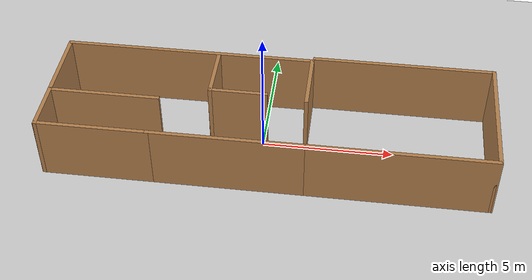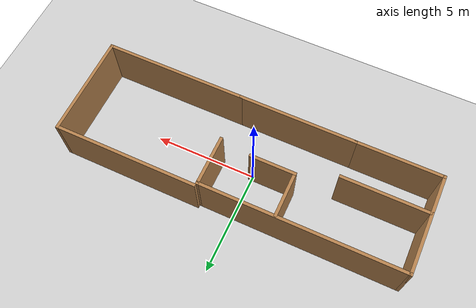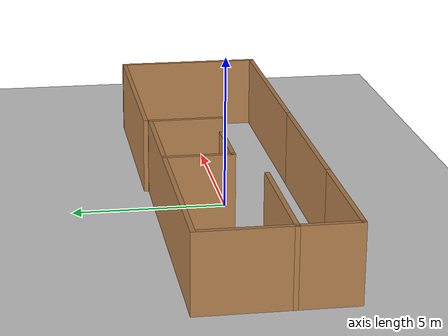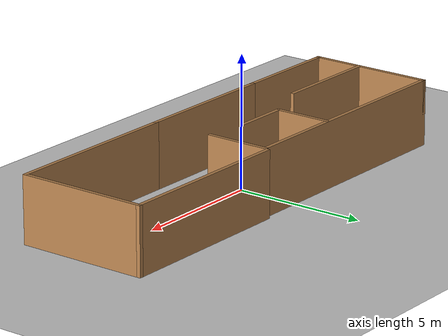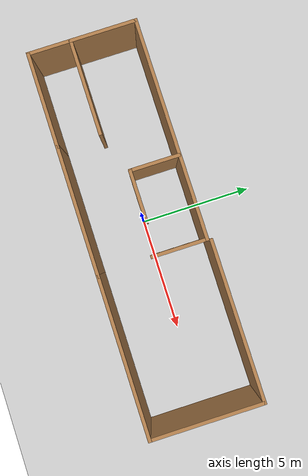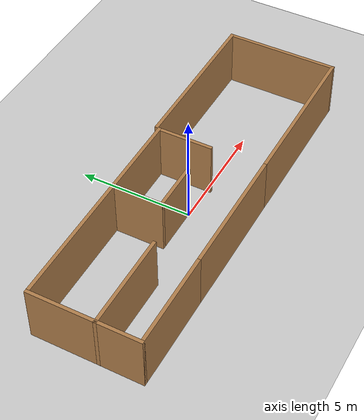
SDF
<sdf version="1.6">
 <world name="default">
  <light name="sun" type="directional">
   <pose>0 0 10 0 -0 0</pose>
   <diffuse>0.8 0.8 0.8 1</diffuse>
   <specular>0.2 0.2 0.2 1</specular>
   <attenuation>
    <range>1000</range>
    <constant>0.9</constant>
    <linear>0.01</linear>
    <quadratic>0.001</quadratic>
   </attenuation>
   <direction>-0.5 0.1 -0.9</direction>
  </light>
  <model name="ground_plane">
   <static>1</static>
   <link name="link">
    <collision name="collision">
     <geometry><plane><normal>0 0 1</normal><size>100 100</size></plane></geometry>
     <surface>
      <contact><collide_bitmask>65535</collide_bitmask></contact>
      <friction><ode><mu>100</mu><mu2>50</mu2></ode></friction>
     </surface>
    </collision>
    <visual name="visual">
     <cast_shadows>0</cast_shadows>
     <geometry><plane><normal>0 0 1</normal><size>100 100</size></plane></geometry>
     <material>
      <script><uri>file://media/materials/scripts/gazebo.material</uri><name>Gazebo/Grey</name></script>
     </material>
    </visual>
   </link>
  </model>
  <gravity>0 0 -9.8</gravity>
  <magnetic_field>6e-06 2.3e-05 -4.2e-05</magnetic_field>
  <atmosphere type="adiabatic"/>
  <physics name="default_physics" default="0" type="ode">
   <max_step_size>0.001</max_step_size>
   <real_time_factor>1</real_time_factor>
   <real_time_update_rate>1000</real_time_update_rate>
  </physics>
  <scene><ambient>0.4 0.4 0.4 1</ambient><background>0.7 0.7 0.7 1</background><shadows>1</shadows></scene>
  <audio><device>default</device></audio>
  <spherical_coordinates>
   <surface_model>EARTH_WGS84</surface_model>
   <latitude_deg>0</latitude_deg>
   <longitude_deg>0</longitude_deg>
   <elevation>0</elevation>
   <heading_deg>0</heading_deg>
  </spherical_coordinates>
  <model name="propmotor">
   <pose>0.309188 -0.028273 0 0 -0 0</pose>
   <link name="Wall_1">
    <collision name="Wall_1_Collision">
     <geometry><box><size>7 0.15 2.5</size></box></geometry>
     <pose>0 0 1.25 0 -0 0</pose>
    </collision>
    <visual name="Wall_1_Visual">
     <pose>0 0 1.25 0 -0 0</pose>
     <geometry><box><size>7 0.15 2.5</size></box></geometry>
     <material>
      <script><uri>file://media/materials/scripts/gazebo.material</uri><name>Gazebo/Wood</name></script>
      <ambient>1 1 1 1</ambient>
     </material>
     <meta><layer>0</layer></meta>
    </visual>
    <pose>4.85 -2.425 0 0 -0 0</pose>
   </link>
   <link name="Wall_11">
    <collision name="Wall_11_Collision">
     <geometry><box><size>2 0.15 2.5</size></box></geometry>
     <pose>0 0 1.25 0 -0 0</pose>
    </collision>
    <visual name="Wall_11_Visual">
     <pose>0 0 1.25 0 -0 0</pose>
     <geometry><box><size>2 0.15 2.5</size></box></geometry>
     <material>
      <script><uri>file://media/materials/scripts/gazebo.material</uri><name>Gazebo/Wood</name></script>
      <ambient>1 1 1 1</ambient>
     </material>
     <meta><layer>0</layer></meta>
    </visual>
    <pose>-8.275 -1.5 0 0 -0 -1.5708</pose>
   </link>
   <link name="Wall_12">
    <collision name="Wall_12_Collision">
     <geometry><box><size>4.25 0.15 2.5</size></box></geometry>
     <pose>0 0 1.25 0 -0 0</pose>
    </collision>
    <visual name="Wall_12_Visual">
     <pose>0 0 1.25 0 -0 0</pose>
     <geometry><box><size>4.25 0.15 2.5</size></box></geometry>
     <material>
      <script><uri>file://media/materials/scripts/gazebo.material</uri><name>Gazebo/Wood</name></script>
      <ambient>1 1 1 1</ambient>
     </material>
     <meta><layer>0</layer></meta>
    </visual>
    <pose>-6.225 -2.425 0 0 -0 0</pose>
   </link>
   <link name="Wall_14">
    <collision name="Wall_14_Collision">
     <geometry><box><size>2.5 0.15 2.5</size></box></geometry>
     <pose>0 0 1.25 0 -0 0</pose>
    </collision>
    <visual name="Wall_14_Visual">
     <pose>0 0 1.25 0 -0 0</pose>
     <geometry><box><size>2.5 0.15 2.5</size></box></geometry>
     <material>
      <script><uri>file://media/materials/scripts/gazebo.material</uri><name>Gazebo/Wood</name></script>
      <ambient>1 1 1 1</ambient>
     </material>
     <meta><layer>0</layer></meta>
    </visual>
    <pose>1.325 1.1 0 0 -0 -1.5708</pose>
   </link>
   <link name="Wall_16">
    <collision name="Wall_16_Collision">
     <geometry><box><size>2.25 0.15 2.5</size></box></geometry>
     <pose>0 0 1.25 0 -0 0</pose>
    </collision>
    <visual name="Wall_16_Visual">
     <pose>0 0 1.25 0 -0 0</pose>
     <geometry><box><size>2.25 0.15 2.5</size></box></geometry>
     <material>
      <script><uri>file://media/materials/scripts/gazebo.material</uri><name>Gazebo/Wood</name></script>
      <ambient>1 1 1 1</ambient>
     </material>
     <meta><layer>0</layer></meta>
    </visual>
    <pose>-2.3199 1.18161 0 0 -0 -1.5708</pose>
   </link>
   <link name="Wall_17">
    <collision name="Wall_17_Collision">
     <geometry><box><size>2.25 0.15 2.5</size></box></geometry>
     <pose>0 0 1.25 0 -0 0</pose>
    </collision>
    <visual name="Wall_17_Visual">
     <pose>0 0 1.25 0 -0 0</pose>
     <geometry><box><size>2.25 0.15 2.5</size></box></geometry>
     <material>
      <script><uri>file://media/materials/scripts/gazebo.material</uri><name>Gazebo/Wood</name></script>
      <ambient>1 1 1 1</ambient>
     </material>
     <meta><layer>0</layer></meta>
    </visual>
    <pose>-1.2699 0.13161 0 0 -0 0</pose>
   </link>
   <link name="Wall_2">
    <collision name="Wall_2_Collision">
     <geometry><box><size>5 0.15 2.5</size></box></geometry>
     <pose>0 0 1.25 0 -0 0</pose>
    </collision>
    <visual name="Wall_2_Visual">
     <pose>0 0 1.25 0 -0 0</pose>
     <geometry><box><size>5 0.15 2.5</size></box></geometry>
     <material>
      <script><uri>file://media/materials/scripts/gazebo.material</uri><name>Gazebo/Wood</name></script>
      <ambient>1 1 1 1</ambient>
     </material>
     <meta><layer>0</layer></meta>
    </visual>
    <pose>8.275 0 0 0 -0 1.5708</pose>
   </link>
   <link name="Wall_3">
    <collision name="Wall_3_Collision">
     <geometry><box><size>7 0.15 2.5</size></box></geometry>
     <pose>0 0 1.25 0 -0 0</pose>
    </collision>
    <visual name="Wall_3_Visual">
     <pose>0 0 1.25 0 -0 0</pose>
     <geometry><box><size>7 0.15 2.5</size></box></geometry>
     <material>
      <script><uri>file://media/materials/scripts/gazebo.material</uri><name>Gazebo/Wood</name></script>
      <ambient>1 1 1 1</ambient>
     </material>
     <meta><layer>0</layer></meta>
    </visual>
    <pose>4.85 2.425 0 0 -0 3.14159</pose>
   </link>
   <link name="Wall_5">
    <collision name="Wall_5_Collision">
     <geometry><box><size>5.75 0.15 2.5</size></box></geometry>
     <pose>0 0 1.25 0 -0 0</pose>
    </collision>
    <visual name="Wall_5_Visual">
     <pose>0 0 1.25 0 -0 0</pose>
     <geometry><box><size>5.75 0.15 2.5</size></box></geometry>
     <material>
      <script><uri>file://media/materials/scripts/gazebo.material</uri><name>Gazebo/Wood</name></script>
      <ambient>1 1 1 1</ambient>
     </material>
     <meta><layer>0</layer></meta>
    </visual>
    <pose>-1.375 -2.425 0 0 -0 3.14159</pose>
   </link>
   <link name="Wall_7">
    <collision name="Wall_7_Collision">
     <geometry><box><size>4.25 0.15 2.5</size></box></geometry>
     <pose>0 0 1.25 0 -0 0</pose>
    </collision>
    <visual name="Wall_7_Visual">
     <pose>0 0 1.25 0 -0 0</pose>
     <geometry><box><size>4.25 0.15 2.5</size></box></geometry>
     <material>
      <script><uri>file://media/materials/scripts/gazebo.material</uri><name>Gazebo/Wood</name></script>
      <ambient>1 1 1 1</ambient>
     </material>
     <meta><layer>0</layer></meta>
    </visual>
    <pose>-6.225 -0.575 0 0 -0 3.14159</pose>
   </link>
   <link name="Wall_8">
    <collision name="Wall_8_Collision">
     <geometry><box><size>3 0.15 2.5</size></box></geometry>
     <pose>0 0 1.25 0 -0 0</pose>
    </collision>
    <visual name="Wall_8_Visual">
     <pose>0 0 1.25 0 -0 0</pose>
     <geometry><box><size>3 0.15 2.5</size></box></geometry>
     <material>
      <script><uri>file://media/materials/scripts/gazebo.material</uri><name>Gazebo/Wood</name></script>
      <ambient>1 1 1 1</ambient>
     </material>
     <meta><layer>0</layer></meta>
    </visual>
    <pose>-8.275 0.85 0 0 -0 1.5708</pose>
   </link>
   <link name="Wall_9">
    <collision name="Wall_9_Collision">
     <geometry><box><size>9.75 0.15 2.5</size></box></geometry>
     <pose>0 0 1.25 0 -0 0</pose>
    </collision>
    <visual name="Wall_9_Visual">
     <pose>0 0 1.25 0 -0 0</pose>
     <geometry><box><size>9.75 0.15 2.5</size></box></geometry>
     <material>
      <script><uri>file://media/materials/scripts/gazebo.material</uri><name>Gazebo/Wood</name></script>
      <ambient>1 1 1 1</ambient>
     </material>
     <meta><layer>0</layer></meta>
    </visual>
    <pose>-3.475 2.275 0 0 -0 0</pose>
   </link>
   <static>1</static>
  </model>
 </world>
</sdf>
